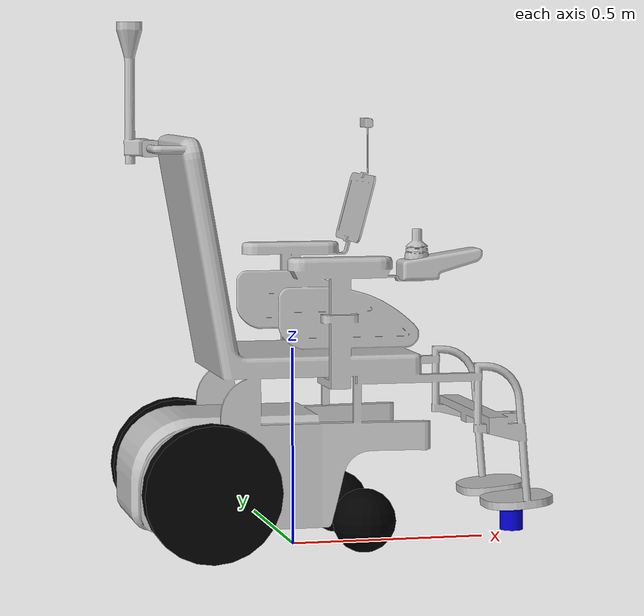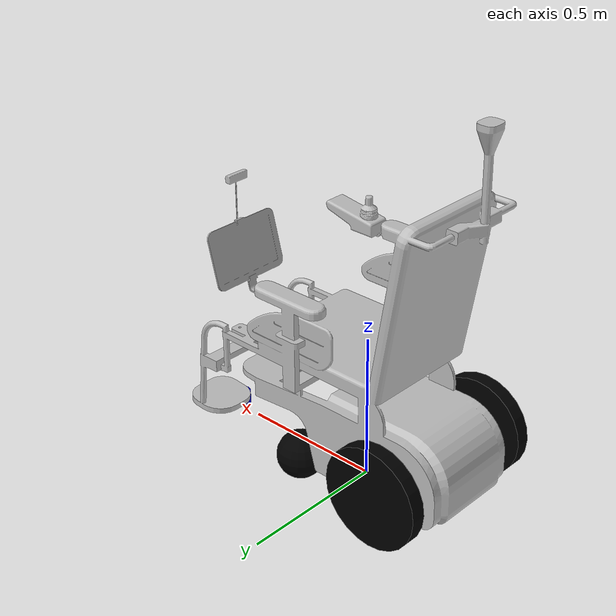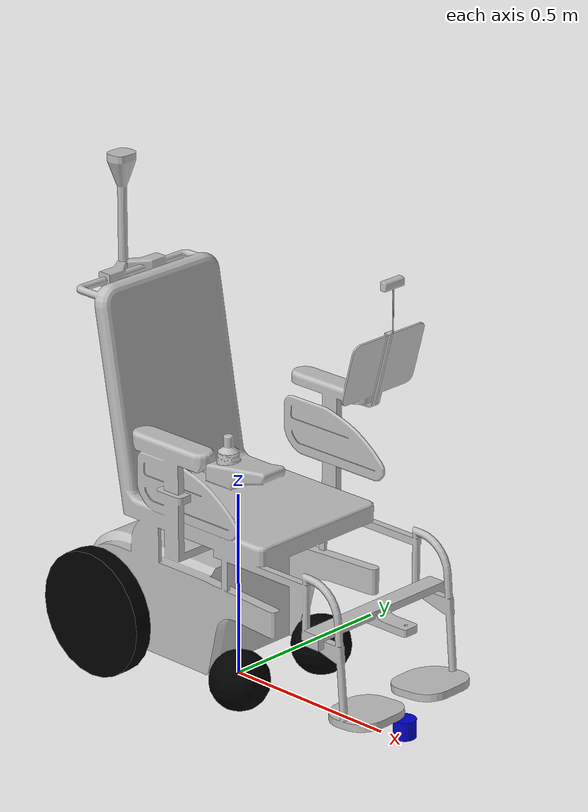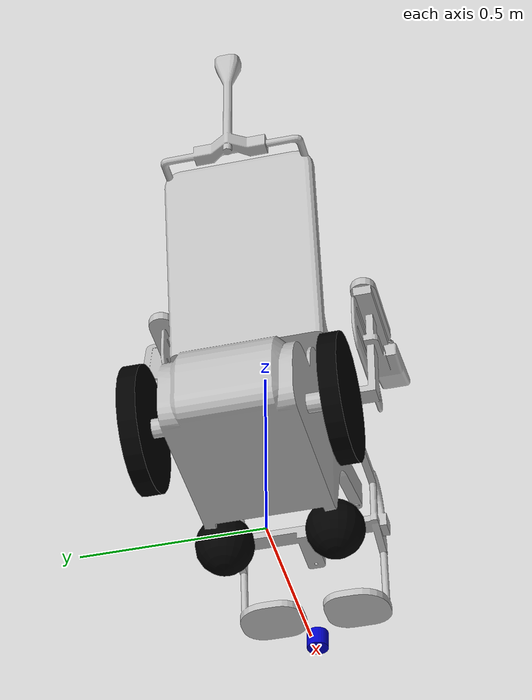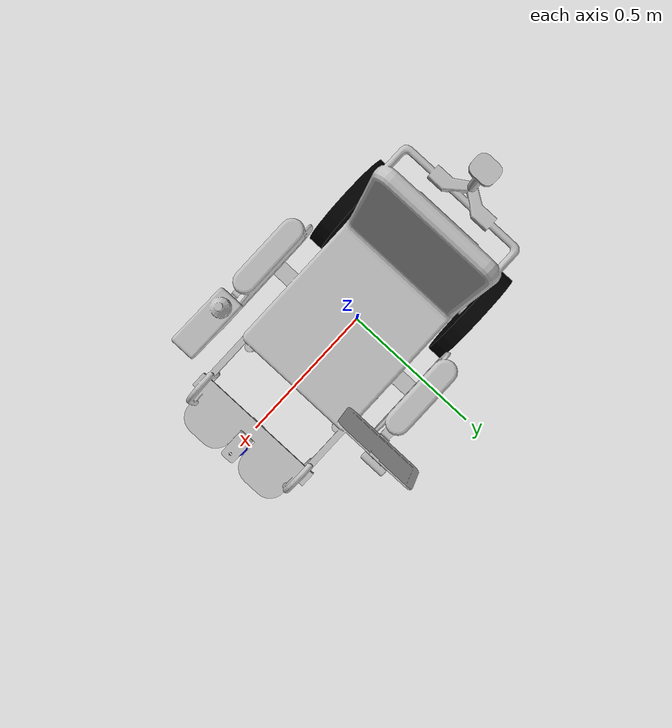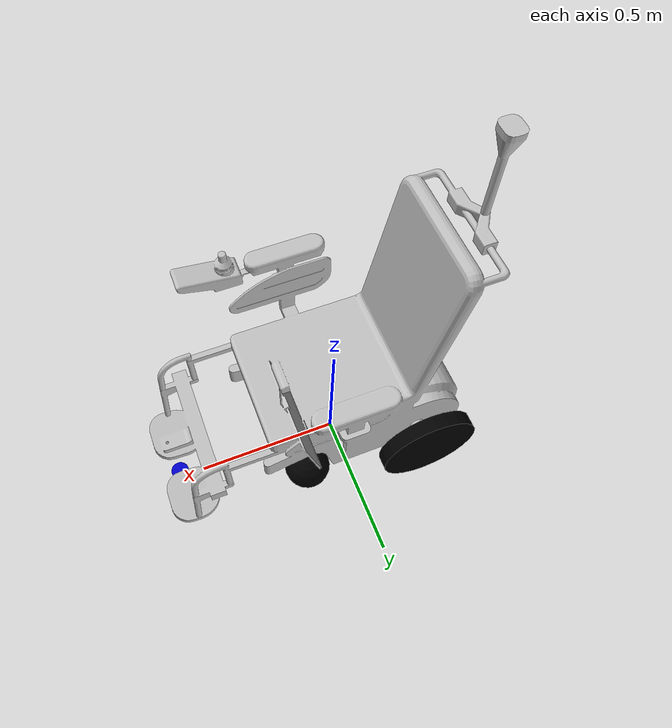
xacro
<?xml version="1.0"?>
<robot name="smartwheelchair" xmlns:xacro="http://ros.org/wiki/xacro">

  <material name="silver"><color rgba="0.75 0.75 0.75 1"/></material>
  <material name="black"><color rgba="0 0 0 1"/></material>
  <material name="blue"><color rgba="0 0 0.8 1"/></material>

  <link name="base_footprint"/>

  <joint name="base_joint" type="fixed">
    <parent link="base_footprint"/>
    <child link="base_link"/>
    <origin xyz="0 0 0" rpy="0 0 0"/>
  </joint>

  <link name="base_link">
    <visual>
      <geometry>
        <mesh filename="package://smartwheelchair/meshes/base_link.stl" scale="0.001 0.001 0.001"/>
      </geometry>
      <material name="silver"/>
    </visual>
    <collision>
      <geometry>
        <mesh filename="package://smartwheelchair/meshes/base_link.stl" scale="0.001 0.001 0.001"/>
      </geometry>
    </collision>
    <inertial>
      <mass value="40.0"/>
      <inertia ixx="0.5" ixy="0" ixz="0" iyy="0.5" iyz="0" izz="0.5"/>
    </inertial>
  </link>

  <link name="left_wheel">
    <visual>
      <geometry><cylinder length="0.05" radius="0.17"/></geometry>
      <material name="black"/>
    </visual>
    <collision>
      <geometry><cylinder length="0.05" radius="0.17"/></geometry>
    </collision>
    <inertial>
      <mass value="2.0"/>
      <inertia ixx="0.01" ixy="0" ixz="0" iyy="0.01" iyz="0" izz="0.01"/>
    </inertial>
  </link>

  <joint name="left_wheel_joint" type="continuous">
    <parent link="base_link"/>
    <child link="left_wheel"/>
    <origin xyz="-0.25395 0.25952 0.1778" rpy="1.5707 0 0"/>
    <axis xyz="0 0 -1"/> </joint>

  <link name="right_wheel">
    <visual>
      <geometry><cylinder length="0.05" radius="0.17"/></geometry>
      <material name="black"/>
    </visual>
    <collision>
      <geometry><cylinder length="0.05" radius="0.17"/></geometry>
    </collision>
    <inertial>
      <mass value="2.0"/>
      <inertia ixx="0.01" ixy="0" ixz="0" iyy="0.01" iyz="0" izz="0.01"/>
    </inertial>
  </link>

  <joint name="right_wheel_joint" type="continuous">
    <parent link="base_link"/>
    <child link="right_wheel"/>
    <origin xyz="-0.25395 -0.25952 0.1778" rpy="1.5707 0 0"/>
    <axis xyz="0 0 -1"/>
  </joint>

  <link name="caster_left">
    <visual>
       <geometry><sphere radius="0.08"/></geometry>
       <material name="black"/>
    </visual>
    <collision>
      <geometry><sphere radius="0.08"/></geometry>
    </collision>
    <inertial>
      <mass value="0.5"/>
      <inertia ixx="0.001" ixy="0" ixz="0" iyy="0.001" iyz="0" izz="0.001"/>
    </inertial>
  </link>

  <joint name="caster_left_joint" type="fixed">
    <parent link="base_link"/>
    <child link="caster_left"/>
    <origin xyz="0.15 0.15 0.08" rpy="0 0 0"/>
  </joint>

  <gazebo reference="caster_left">
    <mu1>0.001</mu1><mu2>0.001</mu2>
  </gazebo>

  <link name="caster_right">
    <visual>
       <geometry><sphere radius="0.08"/></geometry>
       <material name="black"/>
    </visual>
    <collision>
      <geometry><sphere radius="0.08"/></geometry>
    </collision>
    <inertial>
      <mass value="0.5"/>
      <inertia ixx="0.001" ixy="0" ixz="0" iyy="0.001" iyz="0" izz="0.001"/>
    </inertial>
  </link>

  <joint name="caster_right_joint" type="fixed">
    <parent link="base_link"/>
    <child link="caster_right"/>
    <origin xyz="0.15 -0.15 0.08" rpy="0 0 0"/>
  </joint>

  <gazebo reference="caster_right">
    <mu1>0.001</mu1><mu2>0.001</mu2>
  </gazebo>

  <link name="hokuyo_link">
    <visual>
      <geometry><cylinder length="0.05" radius="0.03"/></geometry>
      <material name="blue"/>
    </visual>
    <collision>
      <geometry><cylinder length="0.05" radius="0.03"/></geometry>
    </collision>
    <inertial>
      <mass value="0.1"/>
      <inertia ixx="0.0001" ixy="0" ixz="0" iyy="0.0001" iyz="0" izz="0.0001"/>
    </inertial>
  </link>

  <joint name="hokuyo_joint" type="fixed">
    <parent link="base_link"/>
    <child link="hokuyo_link"/>
    <origin xyz="0.58 0 0.04" rpy="3.14159 0 0"/>
  </joint>

  <gazebo reference="hokuyo_link">
    <sensor name='gpu_lidar' type='gpu_lidar'>
        <pose relative_to='hokuyo_link'>0 0 0 0 0 0</pose>
        <topic>scan</topic>
        <frame_id>hokuyo_link</frame_id>
        <ignition_frame_id>hokuyo_link</ignition_frame_id>

        <update_rate>10</update_rate>
        <lidar>
            <scan>
                <horizontal>
                    <samples>640</samples>
                    <resolution>1</resolution>
                    <min_angle>-3.14</min_angle>
                    <max_angle>3.14</max_angle>
                </horizontal>
                <vertical>
                    <samples>1</samples>
                    <resolution>0.01</resolution>
                    <min_angle>0</min_angle>
                    <max_angle>0</max_angle>
                </vertical>
            </scan>
            <range>
                <min>0.3</min>
                <max>10.0</max>
                <resolution>0.01</resolution>
            </range>
        </lidar>
        <always_on>1</always_on>
        <visualize>true</visualize>
    </sensor>
  </gazebo>

  <gazebo>
    <plugin filename="gz-sim-diff-drive-system" name="gz::sim::systems::DiffDrive">
      <left_joint>left_wheel_joint</left_joint>
      <right_joint>right_wheel_joint</right_joint>
      <wheel_separation>0.52</wheel_separation>
      <wheel_radius>0.17</wheel_radius>
      <max_linear_acceleration>1</max_linear_acceleration>
      <topic>cmd_vel</topic>
      <odom_topic>odom</odom_topic>
      <tf_topic>tf</tf_topic>
      <frame_id>odom</frame_id>
      <child_frame_id>base_footprint</child_frame_id>
    </plugin>
    <plugin filename="gz-sim-joint-state-publisher-system" name="gz::sim::systems::JointStatePublisher"/>
    <plugin filename="gz-sim-sensors-system" name="gz::sim::systems::Sensors">
      <render_engine>ogre2</render_engine>
    </plugin>
  </gazebo>
</robot>
